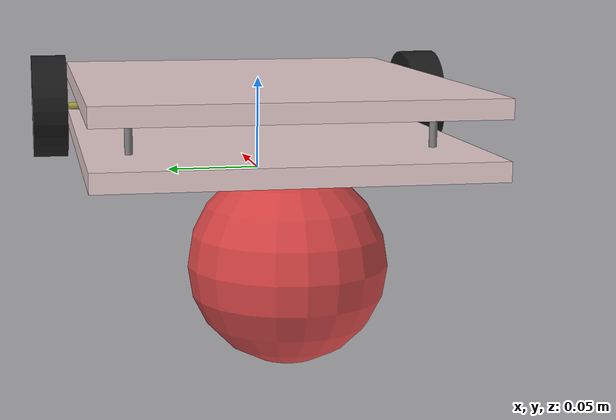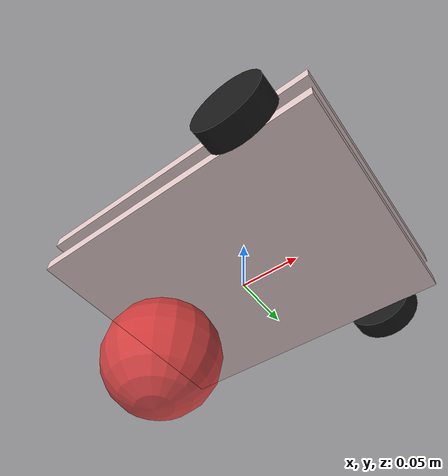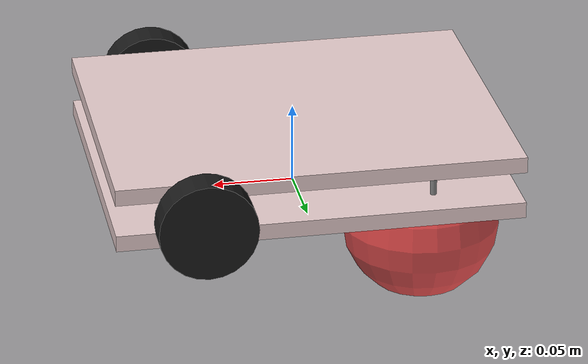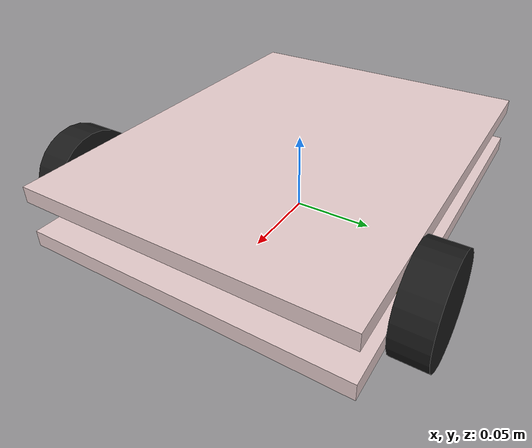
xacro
<?xml version="1.0"?>
<robot xmlns:xacro="http://www.ros.org/wiki/xacro">
<xacro:include filename="inertial_macros.xacro" />

<!-- Cette description est juste une démo pour le robot et non la description finale -->

<!--material-->

<material name="Blue">
    <color rgba="0.15 0.39 0.96 1" />
</material>

<material name="Cyan">
    <color rgba="0.05 1 0.98 0.8" />
</material>

<material name="Pink">
    <color rgba="1 0.09 0.61 0.8" />
</material>

<material name="Purple">
    <color rgba="0.67 0 0.8 0.8" />
</material>

<material name="Green">
    <color rgba="0.29 0.9 0.22 0.8" />
</material>

<material name="Gold">
    <color rgba="0.72 0.67 0.23 0.8" />
</material>

<material name="Red">
    <color rgba="0.94 0.23 0.23 0.8" />
</material>

<material name="Grey">
    <color rgba="0.5 0.5 0.5 1" />
</material>

<material name="White">
    <color rgba="0.9 0.8 0.8 1" />
</material>

<material name="Black">
    <color rgba="0.1 0.1 0.1 1" />
</material>
<!--Links/Joints-->

<!--base_footprint-->
<link name="base_footprint"></link>
<joint name="base_footprint_joint" type="fixed">
    <parent link="base_footprint" />
    <child link="base_link" />
    <origin xyz="0 0 0.015" rpy="0 0 0" />
</joint>

<!--Base_link-->
<link name="base_link">
    <visual>
        <origin xyz="0 0 0" rpy="0 0 0" />
        <geometry>
            <box size="0.25 0.20 0.01" />
        </geometry>
        <material name="White">
        </material>
    </visual>
    <collision>
        <origin xyz="0 0 0" rpy="0 0 0" />
        <geometry>
            <box size="0.25 0.20 0.01" />
        </geometry>
    </collision>

    <xacro:inertial_box mass="1.35" x="0.25" y="0.2" z="0.01" >
        <origin xyz="0 0 0" rpy="0 0 0" />
    </xacro:inertial_box>
</link>
<gazebo reference="base_link">
  <material>Gazebo/White</material>
</gazebo>

<!--remarque : Dans cette description, on essaie de s’approcher le plus possible d’un robot réel -->

<!--Moteur et encodeur -->

<!--moteur gauche-->
<link name="left_enc_link">
    <visual>
        <origin xyz="0 0 0" rpy="0 0 0" />
        <geometry>
            <box size="0.025 0.025 0.025" />
        </geometry>
        <material name="Blue">
        </material>
    </visual>
    <collision>
        <origin xyz="0 0 0" rpy="0 0 0" />
        <geometry>
            <box size="0.025 0.025 0.025" />
        </geometry>
    </collision>

    <xacro:inertial_box mass="0.15" x="0.025" y="0.025" z="0.025" >
        <origin xyz="0 0 0" rpy="0 0 0" />
    </xacro:inertial_box>
</link>

<joint name="Left_enc_joint" type="fixed">
    <parent link="base_link" />
    <child link="left_enc_link" />
    <origin xyz="0.0725 0.0775 0.013" rpy="0 0 0" />
    <limit lower="-1.0" upper="1.0" effort="100" velocity="100" />
</joint>

<gazebo reference="lef_enc_link">
  <material>Gazebo/Blue</material>
</gazebo>

<!--moteur droite-->
<link name="right_enc_link">
    <visual>
        <origin xyz="0 0 0" rpy="0 0 0" />
        <geometry>
            <box size="0.025 0.025 0.025" />
        </geometry>
        <material name="Blue">
        </material>
    </visual>
    <collision>
        <origin xyz="0 0 0" rpy="0 0 0" />
        <geometry>
            <box size="0.025 0.025 0.025" />
        </geometry>
    </collision>

    <xacro:inertial_box mass="0.15" x="0.025" y="0.025" z="0.025" >
        <origin xyz="0 0 0" rpy="0 0 0" />
    </xacro:inertial_box>
</link>

<joint name="right_enc_joint" type="fixed">
    <parent link="base_link" />
    <child link="right_enc_link" />
    <origin xyz="0.0725 -0.0775 0.013" rpy="0 0 0" />
    <limit lower="-1.0" upper="1.0" effort="100" velocity="100" />
</joint>

<gazebo reference="right_enc_link">
  <material>Gazebo/Red</material>
</gazebo>

<!-- left motor out cylinder-->
<link name="left_cy_link">
    <visual>
        <origin xyz="0 0 0" rpy="1.57 0 0" />
        <geometry>
            <cylinder radius="0.002" length="0.02" />
        </geometry>
        <material name="Gold">
        </material>
    </visual>
    <collision>
        <origin xyz="0 0 0" rpy="1.57 0 0" />
        <geometry>
            <cylinder radius="0.01" length="0.02" />
        </geometry>
    </collision>
    <xacro:inertial_cylinder mass="0.01" radius="0.01" length="0.02" >
        <origin xyz="0 0 0" rpy="1.57 0 0" />
    </xacro:inertial_cylinder>
</link>
<joint name="left_cy_joint" type="fixed">
    <parent link="left_enc_link" />
    <child link="left_cy_link" />
    <origin xyz="0 0.02 0" rpy="0 0 0" />
    <limit lower="-1.0" upper="1.0" effort="100" velocity="100" />
</joint>

<gazebo reference="left_cy_link">
  <material>Gazebo/Yellow</material>
</gazebo>

<!-- right motor out cylinder-->
<link name="right_cy_link">
    <visual>
        <origin xyz="0 0 0" rpy="1.57 0 0" />
        <geometry>
            <cylinder radius="0.002" length="0.02" />
        </geometry>
        <material name="Gold">
        </material>
    </visual>
    <collision>
        <origin xyz="0 0 0" rpy="1.57 0 0" />
        <geometry>
            <cylinder radius="0.01" length="0.02" />
        </geometry>
    </collision>
    <xacro:inertial_cylinder mass="0.01" radius="0.01" length="0.02" >
        <origin xyz="0 0 0" rpy="1.57 0 0" />
    </xacro:inertial_cylinder>
</link>
<joint name="right_cy_joint" type="fixed">
    <parent link="right_enc_link" />
    <child link="right_cy_link" />
    <origin xyz="0 -0.02 0" rpy="0 0 0" />
    <limit lower="-1.0" upper="1.0" effort="100" velocity="100" />
</joint>

<gazebo reference="right_cy_link">
  <material>Gazebo/Yellow</material>
</gazebo>

<!--left wheel-->
<link name="left_wheel_link">
    <visual>
        <origin xyz="0 0 0" rpy="1.57 0 0" />
        <geometry>
            <cylinder radius="0.03" length="0.02" />
        </geometry>
        <material name="Black">
        </material>
    </visual>
    <collision>
        <origin xyz="0 0 0" rpy="1.57 0 0" />
        <geometry>
            <cylinder radius="0.03" length="0.02" />
        </geometry>
    </collision>
    <xacro:inertial_cylinder mass="0.3" radius="0.03" length="0.02" >
        <origin xyz="0 0 0" rpy="1.57 0 0" />
    </xacro:inertial_cylinder>
</link>
<joint name="left_wheel_joint" type="continuous">
    <parent link="left_cy_link" />
    <child link="left_wheel_link" />
    <origin xyz="0 0.015 0" rpy="0 0 0" />
    <limit lower="-1.0" upper="1.0" effort="100" velocity="100" />
    <axis xyz="0 1 0" />
</joint>

<gazebo reference="left_wheel_link">
  <material>Gazebo/Black</material>
  <mu1>0.5</mu1>
  <mu2>0.5</mu2>
</gazebo>

<!--right wheel-->
<link name="right_wheel_link">
    <visual>
        <origin xyz="0 0 0" rpy="1.57 0 0" />
        <geometry>
            <cylinder radius="0.03" length="0.02" />
        </geometry>
        <material name="Black">
        </material>
    </visual>
    <collision>
        <origin xyz="0 0 0" rpy="1.57 0 0" />
        <geometry>
            <cylinder radius="0.03" length="0.02" />
        </geometry>
    </collision>
    <xacro:inertial_cylinder mass="0.3" radius="0.03" length="0.02" >
        <origin xyz="0 0 0" rpy="1.57 0 0" />
    </xacro:inertial_cylinder>
</link>
<joint name="right_wheel_joint" type="continuous">
    <parent link="right_cy_link" />
    <child link="right_wheel_link" />
    <origin xyz="0 -0.015 0" rpy="0 0 0" />
    <limit lower="-1.0" upper="1.0" effort="100" velocity="100" />
    <axis xyz="0 1 0" />
</joint>

<gazebo reference="right_wheel_link">
  <material>Gazebo/Black</material>
  <mu1>0.5</mu1>
  <mu2>0.5</mu2>
</gazebo>

<!--caster_wheel-->
<link name="caster_wheel_link">
    <visual>
        <origin xyz="0 0 0" rpy="0 0 0" />
        <geometry>
            <sphere radius="0.05" />
        </geometry>
        <material name="Red">
        </material>
    </visual>
    <collision>
        <origin xyz="0 0 0" rpy="0 0 0" />
        <geometry>
            <sphere radius="0.05" />
        </geometry>
    </collision>
    <xacro:inertial_sphere mass="0.1" radius="0.05">
        <origin xyz="0 0 0" rpy="0 0 0"/>
    </xacro:inertial_sphere>
</link>

<joint name="caster_wheel_base_joint" type="fixed">
    <parent link="base_link" />
    <child link="caster_wheel_link" />
    <origin xyz="-0.0825 0 -0.05" rpy="0 0 0" />
    <limit lower="-1.0" upper="1.0" effort="100" velocity="100" />
    </joint>

<gazebo reference="left_wheel_link">
    <material>Gazebo/Black</material>
    <mu1>0.05</mu1>
    <mu2>0.05</mu2>
</gazebo>

<!--upper_chassis-->
<link name="roof_link">
    <visual>
        <origin xyz="0 0 0" rpy="0 0 0" />
        <geometry>
            <box size="0.25 0.20 0.01" />
        </geometry>
        <material name="White">
        </material>
    </visual>
    <collision>
        <origin xyz="0 0 0" rpy="0 0 0" />
        <geometry>
            <box size="0.25 0.20 0.01" />
        </geometry>
    </collision>

    <xacro:inertial_box mass="1.35" x="0.25" y="0.2" z="0.01" >
        <origin xyz="0 0 0" rpy="0 0 0" />
    </xacro:inertial_box>
</link>

<joint name="roof_base_joint" type="fixed">
    <parent link="base_link" />
    <child link="roof_link" />
    <origin xyz="0 0 0.03" rpy="0 0 0" />
    <limit lower="-1.0" upper="1.0" effort="100" velocity="100" />
</joint>

<gazebo reference="roof_link">
  <material>Gazebo/White</material>
</gazebo>

<!--supprots-->
<!--left_support-->
<link name="left_support_link">
    <visual>
        <origin xyz="0 0 0" rpy="0 0 0" />
        <geometry>
            <cylinder radius="0.002" length="0.025" />
        </geometry>
        <material name="Grey">
        </material>
    </visual>
    <collision>
        <origin xyz="0 0 0" rpy="0 0 0" />
        <geometry>
            <cylinder radius="0.002" length="0.025" />
        </geometry>
    </collision>

    <xacro:inertial_cylinder mass="0.15" radius="0.002" length="0.025" >
        <origin xyz="0 0 0" rpy="0 0 0" />
    </xacro:inertial_cylinder>
</link>

<joint name="left_support_joint" type="fixed">
    <parent link="base_link" />
    <child link="left_support_link" />
    <origin xyz="-0.0725 0.0775 0.013" rpy="0 0 0" />
</joint>

<gazebo reference="left_support_link">
  <material>Gazebo/Grey</material>
</gazebo>

<!--right support-->

<link name="right_support_link">
    <visual>
        <origin xyz="0 0 0" rpy="0 0 0" />
        <geometry>
            <cylinder radius="0.002" length="0.025" />
        </geometry>
        <material name="Grey">
        </material>
    </visual>
    <collision>
        <origin xyz="0 0 0" rpy="0 0 0" />
        <geometry>
            <cylinder radius="0.002" length="0.025" />
        </geometry>
    </collision>

    <xacro:inertial_cylinder mass="0.15" radius="0.002" length="0.025" >
        <origin xyz="0 0 0" rpy="0 0 0" />
    </xacro:inertial_cylinder>
</link>

<joint name="right_support_joint" type="fixed">
    <parent link="base_link" />
    <child link="right_support_link" />
    <origin xyz="-0.0725 -0.0775 0.013" rpy="0 0 0" />
</joint>

<gazebo reference="right_support_link">
  <material>Gazebo/Grey</material>
</gazebo>

</robot>
